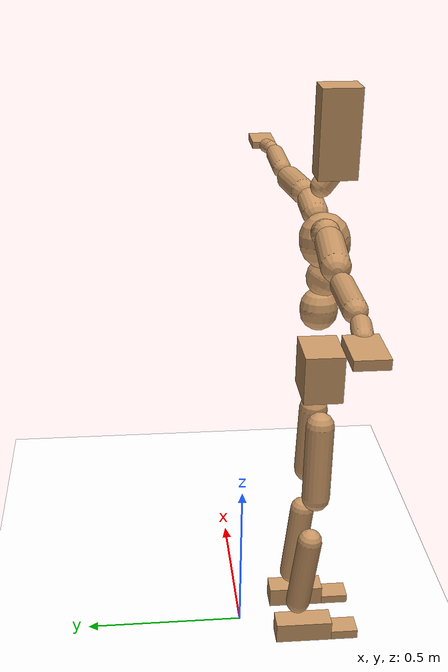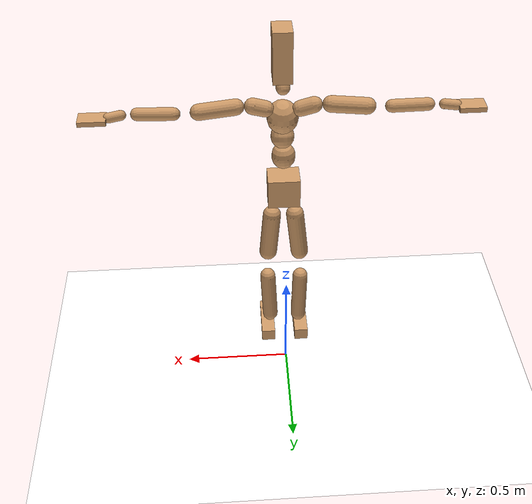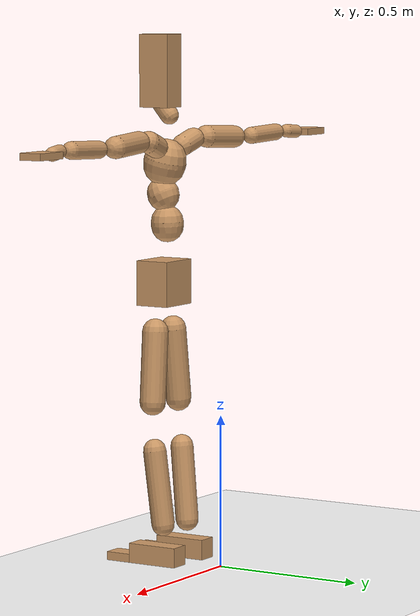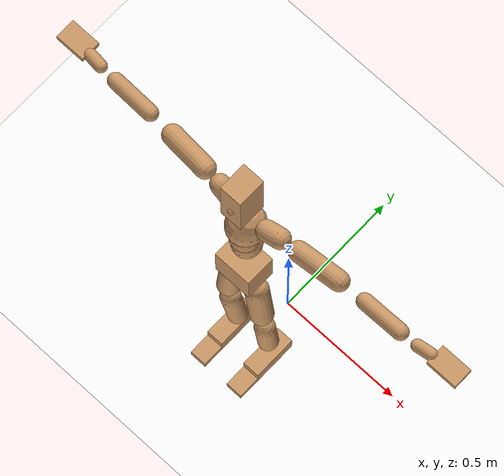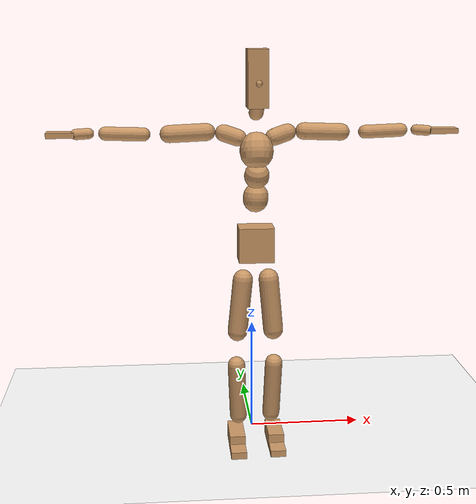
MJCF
<mujoco model="humanoid">
  <option integrator="implicitfast" />

  <visual>
    <global offwidth="1280" offheight="960" />
    <headlight active="1" ambient="0.34 0.34 0.34" diffuse="0.5 0.5 0.5" />
  </visual>

  <default>
    <joint damping="2" stiffness="2" armature="0.01" limited="true" solimplimit="0 .99 .01" />
    <geom condim="1" friction="0.7 0.005 0.0001" solimp=".99 .99 .003" solref="0.015 1" margin="0.001" rgba="0.8 0.6 .4 1" />
    <default class="smplcontact">
      <geom condim="3" friction="1. 0.005 0.0001" solref="0.015 1" solimp="0.98 0.98 0.001" priority="1" />
    </default>
    <default class="stiff_medium">
      <joint stiffness="10" />
    </default>
    <default class="stiff_medium_higher">
      <joint stiffness="50" />
    </default>
    <default class="stiff_high">
      <joint stiffness="100" />
    </default>
  </default>

  <asset>
    <texture type="skybox" builtin="gradient" rgb1="0.99 0.99 0.99" rgb2="0.608 0.828 0.892" width="100" />
    <texture builtin="flat" height="1278" mark="cross" markrgb="1 1 1" name="texgeom" random="0.01" rgb1="0.8 0.6 0.4" rgb2="0.8 0.6 0.4" type="cube" width="127" />
    <texture name="texplane" type="2d" builtin="checker" markrgb="1 1 1" rgb1="0.756 0.772 0.76" rgb2="0.6 0.6 0.6" width="100" height="100" />
    <material name="MatPlane" reflectance="0.5" texture="texplane" texrepeat="1 1" texuniform="true" />
    <material name="geom" texture="texgeom" texuniform="true" />
  </asset>

  <worldbody>
    <light name="tracking_light" pos="0 0 7" dir="0 0 -1" directional="true" cutoff="100" exponent="1" diffuse="1 1 1" specular="0.1 0.1 0.1" mode="trackcom" />
    <camera name="back" pos="0 3 2.4" xyaxes="-1 0 0 0 -1 2" mode="trackcom" />
    <camera name="side" pos="-3 0 2.4" xyaxes="0 -1 0 1 0 2" mode="trackcom" />
    <camera name="front_side" pos="-2.8 -2.8 0.8" xyaxes="0.5 -0.5 0 0.1 0.1 1" mode="trackcom" />
    <geom condim="3" name="floor" pos="0 0 0" rgba="1 1 1 1" size="100 100 .2" type="plane" material="MatPlane" />
    <body name="Pelvis" pos="-0.0018 -0.2233 0.937718" euler="90 0 0">
      <site name="Pelvis" size="0.01" />
      <freejoint name="Pelvis" />
      <geom type="box" pos="0 -0.0123856 -0.00385" size="0.07483 0.0739039 0.0581" quat="1.0000 0.0000 0.0000 0.0000" density="3165.830099" name="Pelvis" />
      <body name="L_Hip" pos="0.04865 -0.093557 -0.00476">
        <joint name="L_Hip_x" type="hinge" pos="0 0 0" axis="1 0 0" stiffness="10" range="-160.0 22.92" class="stiff_medium" damping="15" />
        <joint name="L_Hip_y" type="hinge" pos="0 0 0" axis="0 1 0" stiffness="10" range="-70.0 70.0" class="stiff_medium" damping="10" />
        <joint name="L_Hip_z" type="hinge" pos="0 0 0" axis="0 0 1" stiffness="10" range="-28.65 90.0" class="stiff_medium" damping="10" />
        <geom type="capsule" density="2040.816327" fromto="0.0070395 -0.0767721 -0.000921007 0.0280233 -0.307287 -0.00368473" size="0.04305" name="L_Hip" />
        <body name="L_Knee" pos="0.0350628 -0.384059 -0.00460573">
          <joint name="L_Knee_x" type="hinge" pos="0 0 0" axis="1 0 0" range="-5.16 171.89" damping="8" />
          <joint name="L_Knee_y" type="hinge" pos="0 0 0" axis="0 1 0" range="-4.58 6.88" damping="8" />
          <joint name="L_Knee_z" type="hinge" pos="0 0 0" axis="0 0 1" range="-6.88 4.58" damping="8" />
          <geom type="capsule" density="1234.567901" fromto="-0.00277441 -0.0814758 -0.00892659 -0.0111679 -0.325912 -0.0358473" size="0.03787" name="L_Knee" />
          <body name="L_Ankle" pos="-0.0139423 -0.407387 -0.0447739">
            <joint name="L_Ankle_x" type="hinge" pos="0 0 0" axis="1 0 0" range="-45.84 45.84" class="stiff_medium" damping="6" />
            <joint name="L_Ankle_y" type="hinge" pos="0 0 0" axis="0 1 0" range="-74.48 22.92" class="stiff_medium" damping="3" />
            <joint name="L_Ankle_z" type="hinge" pos="0 0 0" axis="0 0 1" range="-4.58 4.58" class="stiff_medium" damping="6" />
            <geom type="box" pos="0.01631 -0.01673 0.0248945" size="0.03381 0.03248 0.0874395" quat="1.0000 0.0000 0.0000 0.0000" density="449.071558" name="L_Ankle" class="smplcontact" />
            <body name="L_Toe" pos="0.01848 -0.03906 0.122724">
              <joint name="L_Toe_x" type="hinge" pos="0 0 0" axis="1 0 0" range="-91.67 22.92" />
              <joint name="L_Toe_y" type="hinge" pos="0 0 0" axis="0 1 0" range="-4.58 4.58" />
              <joint name="L_Toe_z" type="hinge" pos="0 0 0" axis="0 0 1" range="-4.58 4.58" />
              <geom type="box" pos="-0.0021 0.00385 0.0255118" size="0.03346 0.014 0.0510235" quat="1.0000 0.0000 0.0000 0.0000" density="423.206892" name="L_Toe" class="smplcontact" />
            </body>
          </body>
        </body>
      </body>
      <body name="R_Hip" pos="-0.04739 -0.0926358 -0.00301">
        <joint name="R_Hip_x" type="hinge" pos="0 0 0" axis="1 0 0" stiffness="10" range="-160.0 22.92" class="stiff_medium" damping="15" />
        <joint name="R_Hip_y" type="hinge" pos="0 0 0" axis="0 1 0" stiffness="10" range="-70.0 70.0" class="stiff_medium" damping="10" />
        <joint name="R_Hip_z" type="hinge" pos="0 0 0" axis="0 0 1" stiffness="10" range="-90.0 28.65" class="stiff_medium" damping="10" />
        <geom type="capsule" density="2040.816327" fromto="-0.00785932 -0.0783079 -0.0018315 -0.0312998 -0.313326 -0.00725658" size="0.04242" name="R_Hip" />
        <body name="R_Knee" pos="-0.0391591 -0.391634 -0.00908808">
          <joint name="R_Knee_x" type="hinge" pos="0 0 0" axis="1 0 0" range="-5.16 171.89" damping="8" />
          <joint name="R_Knee_y" type="hinge" pos="0 0 0" axis="0 1 0" range="-6.88 4.58" damping="8" />
          <joint name="R_Knee_z" type="hinge" pos="0 0 0" axis="0 0 1" range="-4.58 6.88" damping="8" />
          <geom type="capsule" density="1234.567901" fromto="0.00325449 -0.0815839 -0.00868048 0.0128763 -0.326224 -0.0345776" size="0.03787" name="R_Knee" />
          <body name="R_Ankle" pos="0.0161308 -0.407808 -0.043258">
            <joint name="R_Ankle_x" type="hinge" pos="0 0 0" axis="1 0 0" range="-45.84 45.84" class="stiff_medium" damping="6" />
            <joint name="R_Ankle_y" type="hinge" pos="0 0 0" axis="0 1 0" range="-22.92 74.48" class="stiff_medium" damping="3" />
            <joint name="R_Ankle_z" type="hinge" pos="0 0 0" axis="0 0 1" range="-4.58 4.58" class="stiff_medium" damping="6" />
            <geom type="box" pos="-0.01484 -0.01218 0.0263347" size="0.03381 0.03346 0.0889825" quat="1.0000 0.0000 0.0000 0.0000" density="434.700981" name="R_Ankle" class="smplcontact" />
            <body name="R_Toe" pos="-0.01778 -0.03367 0.126839">
              <joint name="R_Toe_x" type="hinge" pos="0 0 0" axis="1 0 0" range="-91.67 22.92" />
              <joint name="R_Toe_y" type="hinge" pos="0 0 0" axis="0 1 0" range="-4.58 4.58" />
              <joint name="R_Toe_z" type="hinge" pos="0 0 0" axis="0 0 1" range="-4.58 4.58" />
              <geom type="box" pos="0.00294 0.00315 0.0233515" size="0.03353 0.01512 0.0507149" quat="1.0000 0.0000 0.0000 0.0000" density="407.384095" name="R_Toe" class="smplcontact" />
            </body>
          </body>
        </body>
      </body>
      <body name="Torso" pos="-0.00175 0.111572 -0.01869">
        <joint name="Torso_x" type="hinge" pos="0 0 0" axis="1 0 0" range="-25.78 57.3" class="stiff_medium" damping="15" />
        <joint name="Torso_y" type="hinge" pos="0 0 0" axis="0 1 0" range="-57.3 57.3" class="stiff_high" damping="20" />
        <joint name="Torso_z" type="hinge" pos="0 0 0" axis="0 0 1" range="-34.38 34.38" class="stiff_high" damping="20" />
        <geom type="capsule" density="2040.816327" fromto="0.00247881 0.062238 0.000495763 0.00299061 0.0760566 0.000598123" size="0.05383" name="Torso" />
        <body name="Spine" pos="0.00547062 0.138397 0.00109412">
          <joint name="Spine_x" type="hinge" pos="0 0 0" axis="1 0 0" stiffness="10" range="-25.78 57.3" class="stiff_medium" damping="15" />
          <joint name="Spine_y" type="hinge" pos="0 0 0" axis="0 1 0" stiffness="10" range="-57.3 57.3" class="stiff_high" damping="8" />
          <joint name="Spine_z" type="hinge" pos="0 0 0" axis="0 0 1" stiffness="20" range="-34.38 34.38" class="stiff_high" damping="12" />
          <geom type="capsule" density="2040.816327" fromto="0.000634673 0.0243277 0.0117415 0.000737033 0.0297528 0.0144029" size="0.05285" name="Spine" />
          <body name="Chest" pos="0.00137171 0.0540804 0.0261444">
            <joint name="Chest_x" type="hinge" pos="0 0 0" axis="1 0 0" stiffness="10" range="-25.78 57.3" class="stiff_medium" damping="15" />
            <joint name="Chest_y" type="hinge" pos="0 0 0" axis="0 1 0" stiffness="10" range="-57.3 57.3" class="stiff_high" damping="8" />
            <joint name="Chest_z" type="hinge" pos="0 0 0" axis="0 0 1" stiffness="20" range="-34.38 34.38" class="stiff_high" damping="12" />
            <geom type="capsule" density="2040.816327" fromto="-0.000775999 0.0697858 -0.0178039 -0.000878359 0.0852421 -0.021796" size="0.07014" name="Chest" />
            <body name="Neck" pos="-0.00241201 0.217984 -0.0476584">
              <joint name="Neck_x" type="hinge" pos="0 0 0" axis="1 0 0" range="-28.65 57.3" class="stiff_medium_higher" damping="10" />
              <joint name="Neck_y" type="hinge" pos="0 0 0" axis="0 1 0" range="-40.11 40.11" class="stiff_medium_higher" damping="10" />
              <joint name="Neck_z" type="hinge" pos="0 0 0" axis="0 0 1" range="-40.11 40.11" class="stiff_medium_higher" damping="10" />
              <geom type="capsule" density="1000" fromto="0.00103992 0.0133778 0.0105885 0.00422889 0.0534971 0.0422725" size="0.0306726" name="Neck" />
              <body name="Head" pos="0.00533802 0.0668608 0.0527794">
                <joint name="Head_x" type="hinge" pos="0 0 0" axis="1 0 0" range="-28.65 57.3" class="stiff_medium_higher" damping="2" />
                <joint name="Head_y" type="hinge" pos="0 0 0" axis="0 1 0" range="-40.11 40.11" class="stiff_medium_higher" damping="2" />
                <joint name="Head_z" type="hinge" pos="0 0 0" axis="0 0 1" range="-40.11 40.11" class="stiff_medium_higher" damping="2" />
                <geom type="box" pos="-0.0029547 0.0901141 -0.0081606" size="0.0426321 0.118712 0.053466" quat="1.0000 0.0000 0.0000 0.0000" density="1018.069894" name="Head" />
                <geom type="capsule" name="nose" size="0.01407 0.007035" pos="0 0.072009 0.035175" quat="1 0 0 0" mass="0" contype="0" conaffinity="0" />
              </body>
            </body>
            <body name="L_Thorax" pos="0.0548989 0.124621 -0.0340542">
              <joint name="L_Thorax_x" type="hinge" pos="0 0 0" axis="1 0 0" range="-10.89 4.58" class="stiff_medium_higher" damping="20" />
              <joint name="L_Thorax_y" type="hinge" pos="0 0 0" axis="0 1 0" range="-28.65 17.19" class="stiff_medium_higher" damping="20" />
              <joint name="L_Thorax_z" type="hinge" pos="0 0 0" axis="0 0 1" range="-31.51 40.11" class="stiff_medium_higher" damping="20" />
              <geom type="capsule" density="1000" fromto="0.0186305 0.00624427 -0.00183178 0.074519 0.0249762 -0.00725686" size="0.03647" name="L_Thorax" />
              <body name="L_Shoulder" pos="0.0931495 0.0312204 -0.00908865">
                <joint name="L_Shoulder_x" type="hinge" pos="0 0 0" axis="1 0 0" range="-97.4 97.4" class="stiff_medium" damping="6" />
                <joint name="L_Shoulder_y" type="hinge" pos="0 0 0" axis="0 1 0" range="-108.86 80.21" class="stiff_medium" damping="6" />
                <joint name="L_Shoulder_z" type="hinge" pos="0 0 0" axis="0 0 1" range="-97.4 85.94" class="stiff_medium" damping="6" />
                <geom type="capsule" density="1000" fromto="0.053126 -0.00263932 -0.00562878 0.212603 -0.0104187 -0.0225182" size="0.03619" name="L_Shoulder" />
                <body name="L_Elbow" pos="0.265729 -0.013058 -0.028147">
                  <joint name="L_Elbow_x" type="hinge" pos="0 0 0" axis="1 0 0" range="-17.19 4.58" damping="5" />
                  <joint name="L_Elbow_y" type="hinge" pos="0 0 0" axis="0 1 0" range="-180.0 17.19" damping="5" />
                  <joint name="L_Elbow_z" type="hinge" pos="0 0 0" axis="0 0 1" range="-100.84 4.58" damping="5" />
                  <geom type="capsule" density="1000" fromto="0.0509753 0.0018417 -0.000215406 0.204106 0.00736914 -0.000931926" size="0.02835" name="L_Elbow" />
                  <body name="L_Wrist" pos="0.255081 0.00921085 -0.00121733">
                    <joint name="L_Wrist_x" type="hinge" pos="0 0 0" axis="1 0 0" range="-180.0 22.92" />
                    <joint name="L_Wrist_y" type="hinge" pos="0 0 0" axis="0 1 0" range="-17.19 17.19" />
                    <joint name="L_Wrist_z" type="hinge" pos="0 0 0" axis="0 0 1" range="-22.92 22.92" />
                    <geom type="capsule" density="1000" fromto="0.0171955 -0.00164845 -0.00307062 0.0687849 -0.00666409 -0.012283" size="0.02226" name="L_Wrist" class="smplcontact" />
                    <body name="L_Hand" pos="0.0859779 -0.00838229 -0.0152832">
                      <joint name="L_Hand_x" type="hinge" pos="0 0 0" axis="1 0 0" range="-17.19 17.19" />
                      <joint name="L_Hand_y" type="hinge" pos="0 0 0" axis="0 1 0" range="-51.57 51.57" />
                      <joint name="L_Hand_z" type="hinge" pos="0 0 0" axis="0 0 1" range="-91.67 91.67" />
                      <geom type="box" pos="0.0504635 0.0007 -0.00406" size="0.0598806 0.01106 0.03766" quat="1.0000 0.0000 0.0000 0.0000" density="400.552564" name="L_Hand" class="smplcontact" />
                    </body>
                  </body>
                </body>
              </body>
            </body>
            <body name="R_Thorax" pos="-0.0575198 0.122387 -0.0371514">
              <joint name="R_Thorax_x" type="hinge" pos="0 0 0" axis="1 0 0" range="-10.89 4.58" class="stiff_medium_higher" damping="20" />
              <joint name="R_Thorax_y" type="hinge" pos="0 0 0" axis="0 1 0" range="-17.19 28.65" class="stiff_medium_higher" damping="20" />
              <joint name="R_Thorax_z" type="hinge" pos="0 0 0" axis="0 0 1" range="-40.11 31.51" class="stiff_medium_higher" damping="20" />
              <geom type="capsule" density="1000" fromto="-0.0196522 0.00665309 -0.00185318 -0.0786116 0.0266133 -0.00748298" size="0.03577" name="R_Thorax" />
              <body name="R_Shoulder" pos="-0.0982735 0.0333397 -0.00933709">
                <joint name="R_Shoulder_x" type="hinge" pos="0 0 0" axis="1 0 0" range="-97.4 97.4" class="stiff_medium" damping="6" />
                <joint name="R_Shoulder_y" type="hinge" pos="0 0 0" axis="0 1 0" range="-80.21 108.86" class="stiff_medium" damping="6" />
                <joint name="R_Shoulder_z" type="hinge" pos="0 0 0" axis="0 0 1" range="-85.94 97.4" class="stiff_medium" damping="6" />
                <geom type="capsule" density="1000" fromto="-0.0518982 -0.00275189 -0.00438902 -0.207792 -0.0109407 -0.0174911" size="0.03717" name="R_Shoulder" />
                <body name="R_Elbow" pos="-0.259689 -0.0136225 -0.02188">
                  <joint name="R_Elbow_x" type="hinge" pos="0 0 0" axis="1 0 0" range="-17.19 4.58" damping="5" />
                  <joint name="R_Elbow_y" type="hinge" pos="0 0 0" axis="0 1 0" range="-17.19 180.0" damping="5" />
                  <joint name="R_Elbow_z" type="hinge" pos="0 0 0" axis="0 0 1" range="-4.58 100.84" damping="5" />
                  <geom type="capsule" density="1000" fromto="-0.0523066 0.00161685 -0.00112644 -0.20902 0.00632541 -0.00450432" size="0.02856" name="R_Elbow" />
                  <body name="R_Wrist" pos="-0.261327 0.00794229 -0.00570077">
                    <joint name="R_Wrist_x" type="hinge" pos="0 0 0" axis="1 0 0" range="-180.0 22.92" />
                    <joint name="R_Wrist_y" type="hinge" pos="0 0 0" axis="0 1 0" range="-17.19 17.19" />
                    <joint name="R_Wrist_z" type="hinge" pos="0 0 0" axis="0 0 1" range="-22.92 22.92" />
                    <geom type="capsule" density="1000" fromto="-0.0172996 -0.00123837 -0.00213755 -0.0692985 -0.00502569 -0.00848387" size="0.02282" name="R_Wrist" class="smplcontact" />
                    <body name="R_Hand" pos="-0.0865942 -0.00626379 -0.0105509">
                      <joint name="R_Hand_x" type="hinge" pos="0 0 0" axis="1 0 0" range="-17.19 17.19" />
                      <joint name="R_Hand_y" type="hinge" pos="0 0 0" axis="0 1 0" range="-51.57 51.57" />
                      <joint name="R_Hand_z" type="hinge" pos="0 0 0" axis="0 0 1" range="-91.67 91.67" />
                      <geom type="box" pos="-0.0472903 -0.00063 -0.00553" size="0.0582428 0.01148 0.03822" quat="1.0000 0.0000 0.0000 0.0000" density="403.679611" name="R_Hand" class="smplcontact" />
                    </body>
                  </body>
                </body>
              </body>
            </body>
          </body>
        </body>
      </body>
    </body>
  </worldbody>
  <actuator>
    <general name="L_Hip_x" joint="L_Hip_x" biastype="affine" gainprm="287.33006409732246" biasprm="-215.3247604770444 -180 -2.0" ctrllimited="true" ctrlrange="-1 1" forcerange="-360 360" />
    <general name="L_Hip_y" joint="L_Hip_y" biastype="affine" gainprm="219.9114857512855" biasprm="0.0 -180 -2.0" ctrllimited="true" ctrlrange="-1 1" forcerange="-360 360" />
    <general name="L_Hip_z" joint="L_Hip_z" biastype="affine" gainprm="186.3749841742145" biasprm="96.3683546488669 -180 -2.0" ctrllimited="true" ctrlrange="-1 1" forcerange="-360 360" />
    <general name="L_Knee_x" joint="L_Knee_x" biastype="affine" gainprm="278.10948965903646" biasprm="261.8988715665131 -180 -2.0" ctrllimited="true" ctrlrange="-1 1" forcerange="-360 360" />
    <general name="L_Knee_y" joint="L_Knee_y" biastype="affine" gainprm="18.001325905069514" biasprm="3.612831551628262 -180 -2.0" ctrllimited="true" ctrlrange="-1 1" forcerange="-360 360" />
    <general name="L_Knee_z" joint="L_Knee_z" biastype="affine" gainprm="18.001325905069514" biasprm="-3.612831551628262 -180 -2.0" ctrllimited="true" ctrlrange="-1 1" forcerange="-360 360" />
    <general name="L_Ankle_x" joint="L_Ankle_x" biastype="affine" gainprm="72.00530362027807" biasprm="0.0 -90 -2.0" ctrllimited="true" ctrlrange="-1 1" forcerange="-180 180" />
    <general name="L_Ankle_y" joint="L_Ankle_y" biastype="affine" gainprm="76.49778111491148" biasprm="-40.49512930477244 -90 -2.0" ctrllimited="true" ctrlrange="-1 1" forcerange="-180 180" />
    <general name="L_Ankle_z" joint="L_Ankle_z" biastype="affine" gainprm="7.1942471767206255" biasprm="0.0 -90 -2.0" ctrllimited="true" ctrlrange="-1 1" forcerange="-180 180" />
    <general name="L_Toe_x" joint="L_Toe_x" biastype="affine" gainprm="71.99902043497087" biasprm="-43.19689898685965 -72 -0.8" ctrllimited="true" ctrlrange="-1 1" forcerange="-144 144" />
    <general name="L_Toe_y" joint="L_Toe_y" biastype="affine" gainprm="5.755397741376501" biasprm="0.0 -72 -0.8" ctrllimited="true" ctrlrange="-1 1" forcerange="-144 144" />
    <general name="L_Toe_z" joint="L_Toe_z" biastype="affine" gainprm="5.755397741376501" biasprm="0.0 -72 -0.8" ctrllimited="true" ctrlrange="-1 1" forcerange="-144 144" />
    <general name="R_Hip_x" joint="R_Hip_x" biastype="affine" gainprm="287.33006409732246" biasprm="-215.3247604770444 -180 -2.0" ctrllimited="true" ctrlrange="-1 1" forcerange="-360 360" />
    <general name="R_Hip_y" joint="R_Hip_y" biastype="affine" gainprm="219.9114857512855" biasprm="0.0 -180 -2.0" ctrllimited="true" ctrlrange="-1 1" forcerange="-360 360" />
    <general name="R_Hip_z" joint="R_Hip_z" biastype="affine" gainprm="186.3749841742145" biasprm="-96.3683546488669 -180 -2.0" ctrllimited="true" ctrlrange="-1 1" forcerange="-360 360" />
    <general name="R_Knee_x" joint="R_Knee_x" biastype="affine" gainprm="278.10948965903646" biasprm="261.8988715665131 -180 -2.0" ctrllimited="true" ctrlrange="-1 1" forcerange="-360 360" />
    <general name="R_Knee_y" joint="R_Knee_y" biastype="affine" gainprm="18.001325905069514" biasprm="-3.612831551628262 -180 -2.0" ctrllimited="true" ctrlrange="-1 1" forcerange="-360 360" />
    <general name="R_Knee_z" joint="R_Knee_z" biastype="affine" gainprm="18.001325905069514" biasprm="3.612831551628262 -180 -2.0" ctrllimited="true" ctrlrange="-1 1" forcerange="-360 360" />
    <general name="R_Ankle_x" joint="R_Ankle_x" biastype="affine" gainprm="72.00530362027807" biasprm="0.0 -90 -2.0" ctrllimited="true" ctrlrange="-1 1" forcerange="-180 180" />
    <general name="R_Ankle_y" joint="R_Ankle_y" biastype="affine" gainprm="76.49778111491148" biasprm="40.49512930477244 -90 -2.0" ctrllimited="true" ctrlrange="-1 1" forcerange="-180 180" />
    <general name="R_Ankle_z" joint="R_Ankle_z" biastype="affine" gainprm="7.1942471767206255" biasprm="0.0 -90 -2.0" ctrllimited="true" ctrlrange="-1 1" forcerange="-180 180" />
    <general name="R_Toe_x" joint="R_Toe_x" biastype="affine" gainprm="71.99902043497087" biasprm="-43.19689898685965 -72 -0.8" ctrllimited="true" ctrlrange="-1 1" forcerange="-144 144" />
    <general name="R_Toe_y" joint="R_Toe_y" biastype="affine" gainprm="5.755397741376501" biasprm="0.0 -72 -0.8" ctrllimited="true" ctrlrange="-1 1" forcerange="-144 144" />
    <general name="R_Toe_z" joint="R_Toe_z" biastype="affine" gainprm="5.755397741376501" biasprm="0.0 -72 -0.8" ctrllimited="true" ctrlrange="-1 1" forcerange="-144 144" />
    <general name="Torso_x" joint="Torso_x" biastype="affine" gainprm="174.00234510682668" biasprm="66.0153336274335 -240 -4.0" ctrllimited="true" ctrlrange="-1 1" forcerange="-360 360" />
    <general name="Torso_y" joint="Torso_y" biastype="affine" gainprm="240.0176787342602" biasprm="0.0 -240 -4.0" ctrllimited="true" ctrlrange="-1 1" forcerange="-360 360" />
    <general name="Torso_z" joint="Torso_z" biastype="affine" gainprm="144.01060724055614" biasprm="0.0 -240 -4.0" ctrllimited="true" ctrlrange="-1 1" forcerange="-360 360" />
    <general name="Spine_x" joint="Spine_x" biastype="affine" gainprm="174.00234510682668" biasprm="66.0153336274335 -240 -4.0" ctrllimited="true" ctrlrange="-1 1" forcerange="-360 360" />
    <general name="Spine_y" joint="Spine_y" biastype="affine" gainprm="240.0176787342602" biasprm="0.0 -240 -4.0" ctrllimited="true" ctrlrange="-1 1" forcerange="-360 360" />
    <general name="Spine_z" joint="Spine_z" biastype="affine" gainprm="144.01060724055614" biasprm="0.0 -240 -4.0" ctrllimited="true" ctrlrange="-1 1" forcerange="-360 360" />
    <general name="Chest_x" joint="Chest_x" biastype="affine" gainprm="174.00234510682668" biasprm="66.0153336274335 -240 -4.0" ctrllimited="true" ctrlrange="-1 1" forcerange="-360 360" />
    <general name="Chest_y" joint="Chest_y" biastype="affine" gainprm="240.0176787342602" biasprm="0.0 -240 -4.0" ctrllimited="true" ctrlrange="-1 1" forcerange="-360 360" />
    <general name="Chest_z" joint="Chest_z" biastype="affine" gainprm="144.01060724055614" biasprm="0.0 -240 -4.0" ctrllimited="true" ctrlrange="-1 1" forcerange="-360 360" />
    <general name="Neck_x" joint="Neck_x" biastype="affine" gainprm="27.00198885760427" biasprm="9.000662952534757 -36 -0.8" ctrllimited="true" ctrlrange="-1 1" forcerange="-72 72" />
    <general name="Neck_y" joint="Neck_y" biastype="affine" gainprm="25.20185626709732" biasprm="0.0 -36 -0.8" ctrllimited="true" ctrlrange="-1 1" forcerange="-72 72" />
    <general name="Neck_z" joint="Neck_z" biastype="affine" gainprm="25.20185626709732" biasprm="0.0 -36 -0.8" ctrllimited="true" ctrlrange="-1 1" forcerange="-72 72" />
    <general name="Head_x" joint="Head_x" biastype="affine" gainprm="18.001325905069514" biasprm="6.000441968356505 -24 -0.8" ctrllimited="true" ctrlrange="-1 1" forcerange="-48 48" />
    <general name="Head_y" joint="Head_y" biastype="affine" gainprm="16.801237511398213" biasprm="0.0 -24 -0.8" ctrllimited="true" ctrlrange="-1 1" forcerange="-48 48" />
    <general name="Head_z" joint="Head_z" biastype="affine" gainprm="16.801237511398213" biasprm="0.0 -24 -0.8" ctrllimited="true" ctrlrange="-1 1" forcerange="-48 48" />
    <general name="L_Thorax_x" joint="L_Thorax_x" biastype="affine" gainprm="16.200146117011364" biasprm="-6.6078165480505335 -120 -1.6" ctrllimited="true" ctrlrange="-1 1" forcerange="-240 240" />
    <general name="L_Thorax_y" joint="L_Thorax_y" biastype="affine" gainprm="48.00353574685204" biasprm="-12.00088393671301 -120 -1.6" ctrllimited="true" ctrlrange="-1 1" forcerange="-240 240" />
    <general name="L_Thorax_z" joint="L_Thorax_z" biastype="affine" gainprm="75.00028861670033" biasprm="9.00589894029074 -120 -1.6" ctrllimited="true" ctrlrange="-1 1" forcerange="-240 240" />
    <general name="L_Shoulder_x" joint="L_Shoulder_x" biastype="affine" gainprm="81.5976331892389" biasprm="0.0 -48 -1.6" ctrllimited="true" ctrlrange="-1 1" forcerange="-96 96" />
    <general name="L_Shoulder_y" joint="L_Shoulder_y" biastype="affine" gainprm="79.19745640189629" biasprm="-12.00088393671301 -48 -1.6" ctrllimited="true" ctrlrange="-1 1" forcerange="-96 96" />
    <general name="L_Shoulder_z" joint="L_Shoulder_z" biastype="affine" gainprm="76.79727961455369" biasprm="-4.800353574685214 -48 -1.6" ctrllimited="true" ctrlrange="-1 1" forcerange="-96 96" />
    <general name="L_Elbow_x" joint="L_Elbow_x" biastype="affine" gainprm="13.67849441372996" biasprm="-7.923096672353461 -72 -0.8" ctrllimited="true" ctrlrange="-1 1" forcerange="-144 144" />
    <general name="L_Elbow_y" joint="L_Elbow_y" biastype="affine" gainprm="123.89813107227425" biasprm="-102.29653998619085 -72 -0.8" ctrllimited="true" ctrlrange="-1 1" forcerange="-144 144" />
    <general name="L_Elbow_z" joint="L_Elbow_z" biastype="affine" gainprm="66.23733950828719" biasprm="-60.4819417669107 -72 -0.8" ctrllimited="true" ctrlrange="-1 1" forcerange="-144 144" />
    <general name="L_Wrist_x" joint="L_Wrist_x" biastype="affine" gainprm="21.24973270888136" biasprm="-16.449379134196157 -12 -0.8" ctrllimited="true" ctrlrange="-1 1" forcerange="-24 24" />
    <general name="L_Wrist_y" joint="L_Wrist_y" biastype="affine" gainprm="3.6002651810139037" biasprm="0.0 -12 -0.8" ctrllimited="true" ctrlrange="-1 1" forcerange="-24 24" />
    <general name="L_Wrist_z" joint="L_Wrist_z" biastype="affine" gainprm="4.800353574685205" biasprm="0.0 -12 -0.8" ctrllimited="true" ctrlrange="-1 1" forcerange="-24 24" />
    <general name="L_Hand_x" joint="L_Hand_x" biastype="affine" gainprm="3.6002651810139037" biasprm="0.0 -12 -0.8" ctrllimited="true" ctrlrange="-1 1" forcerange="-24 24" />
    <general name="L_Hand_y" joint="L_Hand_y" biastype="affine" gainprm="10.800795543041708" biasprm="0.0 -12 -0.8" ctrllimited="true" ctrlrange="-1 1" forcerange="-24 24" />
    <general name="L_Hand_z" joint="L_Hand_z" biastype="affine" gainprm="19.199319903638422" biasprm="0.0 -12 -0.8" ctrllimited="true" ctrlrange="-1 1" forcerange="-24 24" />
    <general name="R_Thorax_x" joint="R_Thorax_x" biastype="affine" gainprm="16.200146117011364" biasprm="-6.6078165480505335 -120 -1.6" ctrllimited="true" ctrlrange="-1 1" forcerange="-240 240" />
    <general name="R_Thorax_y" joint="R_Thorax_y" biastype="affine" gainprm="48.00353574685204" biasprm="12.000883936713002 -120 -1.6" ctrllimited="true" ctrlrange="-1 1" forcerange="-240 240" />
    <general name="R_Thorax_z" joint="R_Thorax_z" biastype="affine" gainprm="75.00028861670033" biasprm="-9.00589894029074 -120 -1.6" ctrllimited="true" ctrlrange="-1 1" forcerange="-240 240" />
    <general name="R_Shoulder_x" joint="R_Shoulder_x" biastype="affine" gainprm="81.5976331892389" biasprm="0.0 -48 -1.6" ctrllimited="true" ctrlrange="-1 1" forcerange="-96 96" />
    <general name="R_Shoulder_y" joint="R_Shoulder_y" biastype="affine" gainprm="79.19745640189629" biasprm="12.00088393671301 -48 -1.6" ctrllimited="true" ctrlrange="-1 1" forcerange="-96 96" />
    <general name="R_Shoulder_z" joint="R_Shoulder_z" biastype="affine" gainprm="76.79727961455369" biasprm="4.800353574685204 -48 -1.6" ctrllimited="true" ctrlrange="-1 1" forcerange="-96 96" />
    <general name="R_Elbow_x" joint="R_Elbow_x" biastype="affine" gainprm="13.67849441372996" biasprm="-7.923096672353461 -72 -0.8" ctrllimited="true" ctrlrange="-1 1" forcerange="-144 144" />
    <general name="R_Elbow_y" joint="R_Elbow_y" biastype="affine" gainprm="123.89813107227425" biasprm="102.29653998619085 -72 -0.8" ctrllimited="true" ctrlrange="-1 1" forcerange="-144 144" />
    <general name="R_Elbow_z" joint="R_Elbow_z" biastype="affine" gainprm="66.23733950828719" biasprm="60.481941766910694 -72 -0.8" ctrllimited="true" ctrlrange="-1 1" forcerange="-144 144" />
    <general name="R_Wrist_x" joint="R_Wrist_x" biastype="affine" gainprm="21.24973270888136" biasprm="-16.449379134196157 -12 -0.8" ctrllimited="true" ctrlrange="-1 1" forcerange="-24 24" />
    <general name="R_Wrist_y" joint="R_Wrist_y" biastype="affine" gainprm="3.6002651810139037" biasprm="0.0 -12 -0.8" ctrllimited="true" ctrlrange="-1 1" forcerange="-24 24" />
    <general name="R_Wrist_z" joint="R_Wrist_z" biastype="affine" gainprm="4.800353574685205" biasprm="0.0 -12 -0.8" ctrllimited="true" ctrlrange="-1 1" forcerange="-24 24" />
    <general name="R_Hand_x" joint="R_Hand_x" biastype="affine" gainprm="3.6002651810139037" biasprm="0.0 -12 -0.8" ctrllimited="true" ctrlrange="-1 1" forcerange="-24 24" />
    <general name="R_Hand_y" joint="R_Hand_y" biastype="affine" gainprm="10.800795543041708" biasprm="0.0 -12 -0.8" ctrllimited="true" ctrlrange="-1 1" forcerange="-24 24" />
    <general name="R_Hand_z" joint="R_Hand_z" biastype="affine" gainprm="19.199319903638422" biasprm="0.0 -12 -0.8" ctrllimited="true" ctrlrange="-1 1" forcerange="-24 24" />
  </actuator>
  <contact>
    <exclude body1="Torso" body2="Chest" />
    <exclude body1="Head" body2="Chest" />
    <exclude body1="R_Knee" body2="R_Toe" />
    <exclude body1="R_Knee" body2="L_Ankle" />
    <exclude body1="R_Knee" body2="L_Toe" />
    <exclude body1="L_Knee" body2="L_Toe" />
    <exclude body1="L_Knee" body2="R_Ankle" />
    <exclude body1="L_Knee" body2="R_Toe" />
    <exclude body1="L_Shoulder" body2="Chest" />
    <exclude body1="R_Shoulder" body2="Chest" />
  </contact>
  <sensor>
    <framelinvel name="sensor_Pelvis_framelinvel" objtype="xbody" objname="Pelvis" />
    <framelinvel name="sensor_L_Hip_framelinvel" objtype="xbody" objname="L_Hip" />
    <framelinvel name="sensor_L_Knee_framelinvel" objtype="xbody" objname="L_Knee" />
    <framelinvel name="sensor_L_Ankle_framelinvel" objtype="xbody" objname="L_Ankle" />
    <framelinvel name="sensor_L_Toe_framelinvel" objtype="xbody" objname="L_Toe" />
    <framelinvel name="sensor_R_Hip_framelinvel" objtype="xbody" objname="R_Hip" />
    <framelinvel name="sensor_R_Knee_framelinvel" objtype="xbody" objname="R_Knee" />
    <framelinvel name="sensor_R_Ankle_framelinvel" objtype="xbody" objname="R_Ankle" />
    <framelinvel name="sensor_R_Toe_framelinvel" objtype="xbody" objname="R_Toe" />
    <framelinvel name="sensor_Torso_framelinvel" objtype="xbody" objname="Torso" />
    <framelinvel name="sensor_Spine_framelinvel" objtype="xbody" objname="Spine" />
    <framelinvel name="sensor_Chest_framelinvel" objtype="xbody" objname="Chest" />
    <framelinvel name="sensor_Neck_framelinvel" objtype="xbody" objname="Neck" />
    <framelinvel name="sensor_Head_framelinvel" objtype="xbody" objname="Head" />
    <framelinvel name="sensor_L_Thorax_framelinvel" objtype="xbody" objname="L_Thorax" />
    <framelinvel name="sensor_L_Shoulder_framelinvel" objtype="xbody" objname="L_Shoulder" />
    <framelinvel name="sensor_L_Elbow_framelinvel" objtype="xbody" objname="L_Elbow" />
    <framelinvel name="sensor_L_Wrist_framelinvel" objtype="xbody" objname="L_Wrist" />
    <framelinvel name="sensor_L_Hand_framelinvel" objtype="xbody" objname="L_Hand" />
    <framelinvel name="sensor_R_Thorax_framelinvel" objtype="xbody" objname="R_Thorax" />
    <framelinvel name="sensor_R_Shoulder_framelinvel" objtype="xbody" objname="R_Shoulder" />
    <framelinvel name="sensor_R_Elbow_framelinvel" objtype="xbody" objname="R_Elbow" />
    <framelinvel name="sensor_R_Wrist_framelinvel" objtype="xbody" objname="R_Wrist" />
    <framelinvel name="sensor_R_Hand_framelinvel" objtype="xbody" objname="R_Hand" />
    <frameangvel name="sensor_Pelvis_frameangvel" objtype="xbody" objname="Pelvis" />
    <frameangvel name="sensor_L_Hip_frameangvel" objtype="xbody" objname="L_Hip" />
    <frameangvel name="sensor_L_Knee_frameangvel" objtype="xbody" objname="L_Knee" />
    <frameangvel name="sensor_L_Ankle_frameangvel" objtype="xbody" objname="L_Ankle" />
    <frameangvel name="sensor_L_Toe_frameangvel" objtype="xbody" objname="L_Toe" />
    <frameangvel name="sensor_R_Hip_frameangvel" objtype="xbody" objname="R_Hip" />
    <frameangvel name="sensor_R_Knee_frameangvel" objtype="xbody" objname="R_Knee" />
    <frameangvel name="sensor_R_Ankle_frameangvel" objtype="xbody" objname="R_Ankle" />
    <frameangvel name="sensor_R_Toe_frameangvel" objtype="xbody" objname="R_Toe" />
    <frameangvel name="sensor_Torso_frameangvel" objtype="xbody" objname="Torso" />
    <frameangvel name="sensor_Spine_frameangvel" objtype="xbody" objname="Spine" />
    <frameangvel name="sensor_Chest_frameangvel" objtype="xbody" objname="Chest" />
    <frameangvel name="sensor_Neck_frameangvel" objtype="xbody" objname="Neck" />
    <frameangvel name="sensor_Head_frameangvel" objtype="xbody" objname="Head" />
    <frameangvel name="sensor_L_Thorax_frameangvel" objtype="xbody" objname="L_Thorax" />
    <frameangvel name="sensor_L_Shoulder_frameangvel" objtype="xbody" objname="L_Shoulder" />
    <frameangvel name="sensor_L_Elbow_frameangvel" objtype="xbody" objname="L_Elbow" />
    <frameangvel name="sensor_L_Wrist_frameangvel" objtype="xbody" objname="L_Wrist" />
    <frameangvel name="sensor_L_Hand_frameangvel" objtype="xbody" objname="L_Hand" />
    <frameangvel name="sensor_R_Thorax_frameangvel" objtype="xbody" objname="R_Thorax" />
    <frameangvel name="sensor_R_Shoulder_frameangvel" objtype="xbody" objname="R_Shoulder" />
    <frameangvel name="sensor_R_Elbow_frameangvel" objtype="xbody" objname="R_Elbow" />
    <frameangvel name="sensor_R_Wrist_frameangvel" objtype="xbody" objname="R_Wrist" />
    <frameangvel name="sensor_R_Hand_frameangvel" objtype="xbody" objname="R_Hand" />
    <subtreelinvel name="Chest_subtreelinvel" body="Chest" />
    <gyro name="Pelvis_gyro" site="Pelvis" />
  </sensor>
</mujoco>
